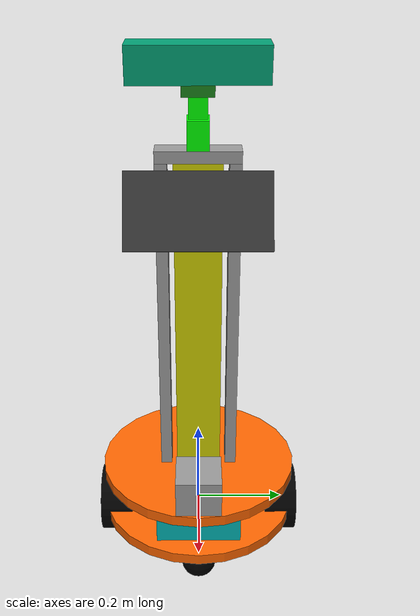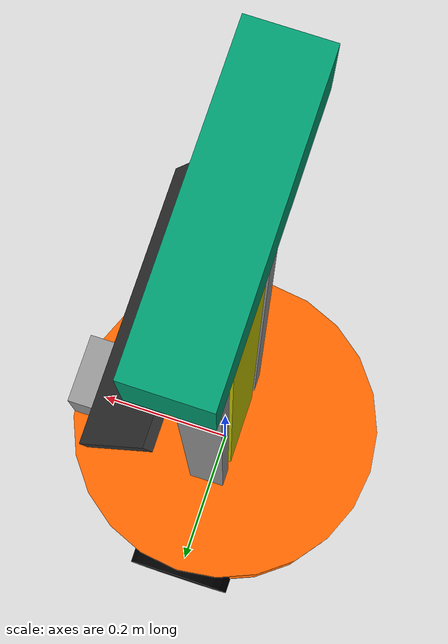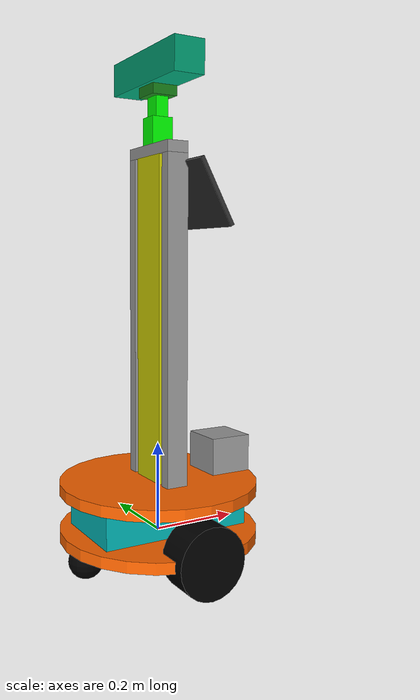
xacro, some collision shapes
<?xml version="1.0"?>
<robot name="robot" xmlns:controller="http://playerstage.sourceforge.net/gazebo/xmlschema/#controller"
       xmlns:interface="http://playerstage.sourceforge.net/gazebo/xmlschema/#interface"
       xmlns:sensor="http://playerstage.sourceforge.net/gazebo/xmlschema/#sensor"
       xmlns:xacro="http://ros.org/wiki/xacro">
  <!-- KINECT ATTACHMENT -->
  <joint name="camera_rgb_joint" type="fixed">
    <origin rpy="0 0 0" xyz="0.028 -0.0125 0.075"/>
    <parent link="kinect_base_link"/>
    <child link="camera_rgb_frame"/>
  </joint>
  <link name="camera_rgb_frame">
    <inertial>
      <mass value="0.001"/>
      <origin xyz="0 0 0"/>
      <inertia ixx="0.0001" ixy="0.0" ixz="0.0" iyy="0.0001" iyz="0.0" izz="0.0001"/>
    </inertial>
  </link>
  <joint name="camera_rgb_optical_joint" type="fixed">
    <origin rpy="-1.57079632679 0 -1.57079632679" xyz="0 0 0"/>
    <parent link="camera_rgb_frame"/>
    <child link="camera_rgb_optical_frame"/>
  </joint>
  <link name="camera_rgb_optical_frame">
    <inertial>
      <mass value="0.001"/>
      <origin xyz="0 0 0"/>
      <inertia ixx="0.0001" ixy="0.0" ixz="0.0" iyy="0.0001" iyz="0.0" izz="0.0001"/>
    </inertial>
  </link>
  <joint name="camera_joint" type="fixed">
    <origin rpy="0 0 0" xyz="-0.031 0.0125 -0.016"/>
    <parent link="camera_rgb_frame"/>
    <child link="camera_link"/>
  </joint>
  <link name="camera_link">
    <visual>
      <!--origin xyz="0 0 0" rpy="0 0 ${M_PI/2}"/-->
      <origin rpy="0 0 0" xyz="0 0 0"/>
      <geometry>
        <mesh filename="package://robot_description/meshes/kinect.dae"/>
      </geometry>
    </visual>
    <collision>
      <origin rpy="0 0 0" xyz="0.0 0.0 0.0"/>
      <geometry>
        <box size="0.07271 0.27794 0.073"/>
      </geometry>
    </collision>
    <inertial>
      <mass value="0.001"/>
      <origin xyz="0 0 0"/>
      <inertia ixx="0.0001" ixy="0.0" ixz="0.0" iyy="0.0001" iyz="0.0" izz="0.0001"/>
    </inertial>
  </link>
  <joint name="camera_depth_joint" type="fixed">
    <origin rpy="0 0 0" xyz="0 0.025 0"/>
    <parent link="camera_rgb_frame"/>
    <child link="camera_depth_frame"/>
  </joint>
  <link name="camera_depth_frame">
    <inertial>
      <mass value="0.001"/>
      <origin xyz="0 0 0"/>
      <inertia ixx="0.0001" ixy="0.0" ixz="0.0" iyy="0.0001" iyz="0.0" izz="0.0001"/>
    </inertial>
  </link>
  <joint name="camera_depth_optical_joint" type="fixed">
    <origin rpy="-1.57079632679 0 -1.57079632679" xyz="0 0 0"/>
    <parent link="camera_depth_frame"/>
    <child link="camera_depth_optical_frame"/>
  </joint>
  <link name="camera_depth_optical_frame">
    <inertial>
      <mass value="0.001"/>
      <origin xyz="0 0 0"/>
      <inertia ixx="0.0001" ixy="0.0" ixz="0.0" iyy="0.0001" iyz="0.0" izz="0.0001"/>
    </inertial>
  </link>
  <!-- LASER ATTACHMENT -->
  <link name="laser">
    <collision>
      <origin rpy="0 0 0" xyz="0 0 0"/>
      <geometry>
        <box size="0.1 0.1 0.1"/>
      </geometry>
    </collision>
    <visual>
      <origin rpy="0 0 0" xyz="0 0 0"/>
      <geometry>
        <mesh filename="package://robot_description/meshes/hokuyo.dae"/>
      </geometry>
    </visual>
    <inertial>
      <mass value="1e-5"/>
      <origin rpy="0 0 0" xyz="0 0 0"/>
      <inertia ixx="1e-6" ixy="0" ixz="0" iyy="1e-6" iyz="0" izz="1e-6"/>
    </inertial>
  </link>
  <joint name="laser_joint" type="fixed">
    <axis xyz="0 0 3.14"/>
    <origin rpy="0 0 0" xyz="0.168 0 0.06"/>
    <parent link="upper_base_link"/>
    <child link="laser"/>
  </joint>
  <!-- Import all Gazebo-customization elements, including Gazebo colors, sensors, controller -->
  <!--Including Gazebo sensors-->
  <gazebo reference="camera_link">
    <sensor name="camera" type="depth">
      <always_on>true</always_on>
      <update_rate>20.0</update_rate>
      <camera>
        <horizontal_fov>1.0471975512</horizontal_fov>
        <image>
          <format>R8G8B8</format>
          <width>640</width>
          <height>480</height>
        </image>
        <clip>
          <near>0.05</near>
          <far>8.0</far>
        </clip>
      </camera>
      <plugin filename="libgazebo_ros_openni_kinect.so" name="kinect_camera_controller">
        <cameraName>camera</cameraName>
        <alwaysOn>true</alwaysOn>
        <updateRate>10</updateRate>
        <imageTopicName>rgb/image_raw</imageTopicName>
        <depthImageTopicName>depth/image_raw</depthImageTopicName>
        <pointCloudTopicName>depth/points</pointCloudTopicName>
        <cameraInfoTopicName>rgb/camera_info</cameraInfoTopicName>
        <depthImageCameraInfoTopicName>depth/camera_info</depthImageCameraInfoTopicName>
        <frameName>camera_depth_optical_frame</frameName>
        <baseline>0.1</baseline>
        <distortion_k1>0.0</distortion_k1>
        <distortion_k2>0.0</distortion_k2>
        <distortion_k3>0.0</distortion_k3>
        <distortion_t1>0.0</distortion_t1>
        <distortion_t2>0.0</distortion_t2>
        <pointCloudCutoff>0.4</pointCloudCutoff>
      </plugin>
    </sensor>
  </gazebo>
  <gazebo reference="laser">
      <material>Gazebo/Grey</material>
      <sensor type="gpu_ray" name="head_hokuyo_sensor">
          <pose>0 0 0 0 0 0</pose>
          <visualize>true</visualize>
          <update_rate>40</update_rate>
          <ray>
              <scan>
                  <horizontal>
                      <samples>720</samples>
                      <resolution>1</resolution>
                      <min_angle>-2.268928028</min_angle>
                      <max_angle>2.268928028</max_angle>
                  </horizontal>
              </scan>
              <range>
                  <min>0.1</min>
                  <max>20.0</max>
                  <resolution>0.01</resolution>
              </range>
              <noise>
                  <type>gaussian</type>
                  <mean>0.0</mean>
                  <stddev>0.01</stddev>
              </noise>
          </ray>
          <plugin name="gazebo_ros_head_hokuyo_controller" filename="libgazebo_ros_gpu_laser.so">
              <robotNamespace>/robot</robotNamespace>
              <topicName>/scan</topicName>
              <frameName>laser</frameName>
          </plugin>
      </sensor>
  </gazebo>
  <!--Including Gazebo controller -->
  <gazebo>
    <plugin filename="libgazebo_ros_control.so" name="gazebo_ros_control">
      <robotNamespace>/robot</robotNamespace>
    </plugin>
  </gazebo>
  <!-- Including Gazebo ros diff drive -->
  <gazebo>
    <plugin filename="libgazebo_ros_diff_drive.so" name="differential_drive_controller">
      <rosDebugLevel>Debug</rosDebugLevel>
      <publishWheelTF>true</publishWheelTF>
      <publishWheelJointState>false</publishWheelJointState>
      <alwaysOn>true</alwaysOn>
      <updateRate>100</updateRate>
      <leftJoint>base_to_wheel4</leftJoint>
      <rightJoint>base_to_wheel2</rightJoint>
      <wheelSeparation>0.390</wheelSeparation>
      <wheelDiameter>0.155</wheelDiameter>
      <wheelTorque>30</wheelTorque>
      <wheelAcceleration>0.25</wheelAcceleration>
      <commandTopic>cmd_vel</commandTopic>
      <odometryTopic>odom</odometryTopic>
      <odometryFrame>odom</odometryFrame>
      <robotBaseFrame>base_footprint</robotBaseFrame>
      <publishOdomTF>true</publishOdomTF>
    </plugin>
  </gazebo>
  <!--Including Gazebo colors-->
  <gazebo reference="base_link">
    <material>Gazebo/Orange</material>
  </gazebo>
  <gazebo reference="wheel_1">
    <mu1 value="0.0"/>
    <mu2 value="0.0"/>
    <material>Gazebo/Black</material>
  </gazebo>
  <gazebo reference="wheel_2">
    <material>Gazebo/Black</material>
    <mu1>1000000.0</mu1>
    <mu2>1000000.0</mu2>
    <kp>1000000.0</kp>
    <kd>100</kd>
    <minDepth>0.001</minDepth>
    <maxVel>1.0</maxVel>
  </gazebo>
  <gazebo reference="wheel_3">
    <mu1 value="0.0"/>
    <mu2 value="0.0"/>
    <material>Gazebo/Black</material>
  </gazebo>
  <gazebo reference="wheel_4">
    <material>Gazebo/Black</material>
    <mu1>1000000.0</mu1>
    <mu2>1000000.0</mu2>
    <kp>1000000.0</kp>
    <kd>100.0</kd>
    <minDepth>0.001</minDepth>
    <maxVel>1.0</maxVel>
  </gazebo>
  <gazebo reference="cpu_link">
    <mu1 value="0.0"/>
    <mu2 value="0.0"/>
    <material>Gazebo/SkyBlue</material>
  </gazebo>
  <gazebo reference="upper_base_link">
    <material>Gazebo/Orange</material>
  </gazebo>
  <gazebo reference="torso_link">
    <material>Gazebo/RedGlow</material>
  </gazebo>
  <gazebo reference="right_torso_link">
    <material>Gazebo/Grey</material>
  </gazebo>
  <gazebo reference="left_torso_link">
    <material>Gazebo/Grey</material>
  </gazebo>
  <gazebo reference="top_torso_link">
    <material>Gazebo/Grey</material>
  </gazebo>
  <gazebo reference="head_pan_link">
    <material>Gazebo/Green</material>
  </gazebo>
  <gazebo reference="head_tilt_link">
    <material>Gazebo/GreenGlow</material>
  </gazebo>
  <gazebo reference="kinect_base_link">
    <material>Gazebo/Green</material>
  </gazebo>
  <gazebo reference="screen_link">
    <material>Gazebo/Black</material>
  </gazebo>
  <!-- Add view camera - working -->
  <joint name="view_camera_joint" type="continuous"> <!--type="continuous"-->
    <origin rpy="0 1.570796 0" xyz="0 0 6"/>
    <parent link="kinect_base_link"/>
    <child link="view_camera_link"/>
    <!-- use the following line and type="continuous" to fix the angle of the view camera -->
    <axis xyz="1 0 0"/>
  </joint>
  <link name="view_camera_link">
    <inertial>
      <mass value="1e-5"/>
      <origin rpy="0 0 0" xyz="0 0 0"/>
      <inertia ixx="1e-6" ixy="0" ixz="0" iyy="1e-6" iyz="0" izz="1e-6"/>
    </inertial>
  </link>
  <gazebo reference="view_camera_link">
    <sensor name="view_camera" type="camera">
      <update_rate>30.0</update_rate>
      <camera name="head">
        <image>
          <width>960</width>
          <height>540</height>
          <format>R8G8B8</format>
        </image>
        <clip>
          <near>0.02</near>
          <far>300</far>
        </clip>
        <noise>
          <type>gaussian</type>
          <mean>0.0</mean>
          <stddev>0.007</stddev>
        </noise>
      </camera>
      <plugin filename="libgazebo_ros_camera.so" name="camera_controller">
        <alwaysOn>true</alwaysOn>
        <updateRate>25.0</updateRate>
        <cameraName>view_camera</cameraName>
        <imageTopicName>image_raw</imageTopicName>
        <cameraInfoTopicName>camera_info</cameraInfoTopicName>
        <frameName>view_camera_link</frameName>
        <CxPrime>320.5</CxPrime>
        <Cx>320.5</Cx>
        <Cy>240.5</Cy>
        <!-- image_width / (2*tan(hfov_radian /2)) -->
        <!-- 320 for wide and 772.55 for narrow stereo camera -->
        <focal_length>320</focal_length>
        <distortion_k1>0.0</distortion_k1>
        <distortion_k2>0.0</distortion_k2>
        <distortion_k3>0.0</distortion_k3>
        <distortion_t1>0.0</distortion_t1>
        <distortion_t2>0.0</distortion_t2>
      </plugin>
    </sensor>
    <material>Gazebo/Blue</material>
  </gazebo>
  <!--xacro:property name="height_torso" value="0.625" /-->
  <!-- HARDWAER OF ROBOT -->
  <!-- ========= LINKS =========== -->
  <link name="base_footprint">
    <visual>
      <geometry>
        <box size="0.001 0.001 0.001"/>
      </geometry>
      <origin rpy="0 0 0" xyz="0 0 0"/>
      <!--origin rpy="0 0 -0.784900" xyz="0 0 0"/-->
    </visual>
    <inertial>
      <mass value="0.0001"/>
      <inertia ixx="1.0" ixy="0.0" ixz="0.0" iyy="1.0" iyz="0.0" izz="1.0"/>
    </inertial>
  </link>
  <joint name="base_footprint_joint" type="fixed">
    <origin xyz="0 0 0"/>
    <parent link="base_footprint"/>
    <child link="base_link"/>
  </joint>
  <link name="base_link">
    <visual>
      <origin rpy="0 0 0" xyz="0 0 0"/>
      <geometry>
        <cylinder length="0.025" radius="0.225"/>
      </geometry>
      <material name="Orange">
        <color rgba="1.0 0.4 0.0 1.0"/>
      </material>
    </visual>
    <collision>
      <geometry>
        <cylinder length="0.025" radius="0.225"/>
      </geometry>
    </collision>
    <inertial>
      <mass value="10"/>
      <inertia ixx="0.571875" ixy="0" ixz="0" iyy="0.571875" iyz="0" izz="1.1390625"/>
    </inertial>
  </link>
  <!--front wheel -->
  <link name="wheel_1">
    <visual>
      <origin rpy="0 0 0" xyz="0 0 0"/>
      <geometry>
        <sphere radius="0.03875"/>
      </geometry>
      <material name="black">
        <color rgba="0 0 0 1"/>
      </material>
    </visual>
    <collision>
      <origin rpy="0 0 0" xyz="0 0 0"/>
      <geometry>
        <sphere radius="0.03875"/>
      </geometry>
    </collision>
    <inertial>
      <origin rpy="0 0 0" xyz="0 0 0"/>
      <mass value="2"/>
      <inertia ixx="0.00120125" ixy="0" ixz="0" iyy="0.00120125" iyz="0" izz="0.00120125"/>
    </inertial>
  </link>
  <!-- left wheel -->
  <link name="wheel_2">
    <visual>
      <geometry>
        <cylinder length="0.075" radius="0.0775"/>
      </geometry>
      <origin rpy="0 0 0" xyz="0 0 0"/>
      <material name="black"/>
    </visual>
    <collision>
      <origin rpy="0 0 0" xyz="0 0 0"/>
      <geometry>
        <cylinder length="0.075" radius="0.0775"/>
      </geometry>
    </collision>
    <inertial>
      <mass value="2"/>
      <inertia ixx="0.003940625" ixy="0" ixz="0" iyy="0.003940625" iyz="0" izz="0.00600625"/>
    </inertial>
  </link>
  <!-- back wheel -->
  <link name="wheel_3">
    <visual>
      <origin rpy="0 0 0" xyz="0 0 0"/>
      <geometry>
        <sphere radius="0.03875"/>
      </geometry>
      <material name="black">
        <color rgba="0 0 0 1"/>
      </material>
    </visual>
    <collision>
      <origin rpy="0 0 0" xyz="0 0 0"/>
      <geometry>
        <sphere radius="0.03875"/>
      </geometry>
    </collision>
    <inertial>
      <origin rpy="0 0 0" xyz="0 0 0"/>
      <mass value="2"/>
      <inertia ixx="0.00120125" ixy="0" ixz="0" iyy="0.00120125" iyz="0" izz="0.00120125"/>
    </inertial>
  </link>
  <!-- right wheel -->
  <link name="wheel_4">
    <visual>
      <geometry>
        <cylinder length="0.075" radius="0.0775"/>
      </geometry>
      <origin rpy="0 0 0" xyz="0 0 0"/>
      <material name="black"/>
    </visual>
    <collision>
      <origin rpy="0 0 0" xyz="0 0 0"/>
      <geometry>
        <cylinder length="0.075" radius="0.0775"/>
      </geometry>
    </collision>
    <inertial>
      <mass value="2"/>
      <inertia ixx="0.003940625" ixy="0" ixz="0" iyy="0.003940625" iyz="0" izz="0.00600625"/>
    </inertial>
  </link>
  <link name="cpu_link">
    <visual>
      <geometry>
        <box size="0.35 .19 0.095"/>
      </geometry>
      <origin rpy="0 0 0" xyz="0 0 0.0475"/>
      <material name="Cyan2">
        <color rgba="0 0.7 0.7 1.0"/>
      </material>
    </visual>
    <collision>
      <origin rpy="0 0 0" xyz="0 0 0.0475"/>
      <geometry>
        <box size="0.35 .19 0.095"/>
      </geometry>
    </collision>
    <inertial>
      <mass value="2"/>
      <inertia ixx="1.0" ixy="0.0" ixz="0.0" iyy="1.0" iyz="0.0" izz="1.0"/>
    </inertial>
  </link>
  <link name="upper_base_link">
    <visual>
      <origin rpy="0 0 0" xyz="0 0 0.0125"/>
      <geometry>
        <cylinder length="0.025" radius="0.225"/>
      </geometry>
      <material name="Orange">
        <color rgba="1.0 0.4 0.0 1.0"/>
      </material>
    </visual>
    <collision>
      <origin rpy="0 0 0" xyz="0 0 0.0125"/>
      <geometry>
        <cylinder length="0.025" radius="0.225"/>
      </geometry>
    </collision>
    <inertial>
      <mass value="1"/>
      <inertia ixx="1.0" ixy="0.0" ixz="0.0" iyy="1.0" iyz="0.0" izz="1.0"/>
    </inertial>
  </link>
  <link name="torso_link">
    <visual>
      <origin rpy="0 0 0" xyz="0 0 0.3625"/>
      <geometry>
        <box size="0.05 0.1 0.725"/>
      </geometry>
      <material name="Yellow2">
        <color rgba="0.8 0.8 0 1.0"/>
      </material>
    </visual>
    <collision>
      <origin rpy="0 0 0" xyz="0 0 0.3625"/>
      <geometry>
        <box size="0.05 0.1 0.725"/>
      </geometry>
    </collision>
    <inertial>
      <mass value="1"/>
      <inertia ixx="1.0" ixy="0.0" ixz="0.0" iyy="1.0" iyz="0.0" izz="1.0"/>
    </inertial>
  </link>
  <link name="right_torso_link">
    <visual>
      <origin rpy="0 0 0" xyz="0 0 0.3625"/>
      <geometry>
        <box size="0.05 0.025 0.725"/>
      </geometry>
      <material name="Grey2">
        <color rgba="0.6 0.6 0.6 1.0"/>
      </material>
    </visual>
    <collision>
      <origin rpy="0 0 0" xyz="0 0 0.3625"/>
      <geometry>
        <box size="0.05 0.1 0.725"/>
      </geometry>
    </collision>
    <inertial>
      <mass value="1"/>
      <inertia ixx="1.0" ixy="0.0" ixz="0.0" iyy="1.0" iyz="0.0" izz="1.0"/>
    </inertial>
  </link>
  <link name="left_torso_link">
    <visual>
      <origin rpy="0 0 0" xyz="0 0 0.3625"/>
      <geometry>
        <box size="0.05 0.025 0.725"/>
      </geometry>
      <material name="Grey2">
        <color rgba="0.6 0.6 0.6 1.0"/>
      </material>
    </visual>
    <collision>
      <origin rpy="0 0 0" xyz="0 0 0.3625"/>
      <geometry>
        <box size="0.05 0.1 0.725"/>
      </geometry>
    </collision>
    <inertial>
      <mass value="1"/>
      <inertia ixx="1.0" ixy="0.0" ixz="0.0" iyy="1.0" iyz="0.0" izz="1.0"/>
    </inertial>
  </link>
  <link name="top_torso_link">
    <visual>
      <origin rpy="0 0 0" xyz="0 0 0.0125"/>
      <geometry>
        <box size="0.05 0.175 0.025"/>
      </geometry>
      <material name="Grey2">
        <color rgba="0.6 0.6 0.6 1.0"/>
      </material>
    </visual>
    <collision>
      <origin rpy="0 0 0" xyz="0 0 0.0125"/>
      <geometry>
        <box size="0.05 0.125 0.025"/>
      </geometry>
    </collision>
    <inertial>
      <mass value="0.125"/>
      <inertia ixx="1.0" ixy="0.0" ixz="0.0" iyy="1.0" iyz="0.0" izz="1.0"/>
    </inertial>
  </link>
  <link name="head_pan_link">
    <visual>
      <origin rpy="0 0 0" xyz="0 0 0.03"/>
      <geometry>
        <box size="0.05 0.045 0.06"/>
      </geometry>
      <material name="Green1">
        <color rgba="0 1 0 1.0"/>
      </material>
    </visual>
    <collision>
      <origin rpy="0 0 0" xyz="0 0 0.03"/>
      <geometry>
        <box size="0.05 0.045 0.06"/>
      </geometry>
    </collision>
    <inertial>
      <mass value="0.125"/>
      <inertia ixx="1.0" ixy="0.0" ixz="0.0" iyy="1.0" iyz="0.0" izz="1.0"/>
    </inertial>
  </link>
  <link name="head_tilt_link">
    <visual>
      <origin rpy="0 0 0" xyz="0 0 0.0225"/>
      <geometry>
        <box size="0.03 0.038 0.045"/>
      </geometry>
      <material name="Green1">
        <color rgba="0 1 0 1.0"/>
      </material>
    </visual>
    <collision>
      <origin rpy="0 0 0" xyz="0 0 0.0225"/>
      <geometry>
        <box size="0.03 0.038 0.045"/>
      </geometry>
    </collision>
    <inertial>
      <mass value="0.125"/>
      <inertia ixx="1.0" ixy="0.0" ixz="0.0" iyy="1.0" iyz="0.0" izz="1.0"/>
    </inertial>
  </link>
  <link name="kinect_base_link">
    <visual>
      <origin rpy="0 0 0" xyz="0 0 0.0125"/>
      <geometry>
        <box size="0.06 0.065 0.025"/>
      </geometry>
      <material name="Green3">
        <color rgba="0.1 0.5 0.1 1.0"/>
      </material>
    </visual>
    <collision>
      <geometry>
        <box size="0.06 0.065 0.025"/>
      </geometry>
    </collision>
    <inertial>
      <mass value="0.125"/>
      <inertia ixx="1.0" ixy="0.0" ixz="0.0" iyy="1.0" iyz="0.0" izz="1.0"/>
    </inertial>
  </link>
  <link name="screen_link">
    <visual>
      <origin rpy="0 -0.5 0" xyz="0.06 0 -0.11"/>
      <geometry>
        <box size="0.01 0.3 0.16"/>
      </geometry>
      <material name="Grey3">
        <color rgba="0.2 0.2 0.2 1.0"/>
      </material>
    </visual>
    <collision>
      <origin rpy="0 -0.5 0" xyz="0.06 0 -0.11"/>
      <geometry>
        <box size="0.01 0.3 0.16"/>
      </geometry>
    </collision>
    <inertial>
      <mass value="0.125"/>
      <inertia ixx="1.0" ixy="0.0" ixz="0.0" iyy="1.0" iyz="0.0" izz="1.0"/>
    </inertial>
  </link>
  <!-- ========= JOINTS =========== -->
  <joint name="base_to_wheel1" type="continuous">
    <parent link="base_link"/>
    <child link="wheel_1"/>
    <origin rpy="0 0 0" xyz="0.18 0 -0.03865234375"/>
    <axis xyz="0 0 1"/>
  </joint>
  <joint name="base_to_wheel2" type="continuous">
    <axis xyz="0 0 1"/>
    <parent link="base_link"/>
    <child link="wheel_2"/>
    <origin rpy="-1.5707 0 0" xyz="0 -0.195 0"/>
  </joint>
  <joint name="base_to_wheel3" type="continuous">
    <parent link="base_link"/>
    <axis xyz="0 0 1"/>
    <child link="wheel_3"/>
    <!--added length_base/32 to get the contact of the wheel with the floor -->
    <origin rpy="0 0 0" xyz="-0.18 0 -0.03865234375"/>
  </joint>
  <joint name="base_to_wheel4" type="continuous">
    <parent link="base_link"/>
    <axis xyz="0 0 1"/>
    <child link="wheel_4"/>
    <origin rpy="-1.5707 0 0" xyz="0 0.195 0"/>
  </joint>
  <joint name="cpu_base_joint" type="fixed">
    <origin xyz="0 0 0"/>
    <parent link="base_link"/>
    <child link="cpu_link"/>
  </joint>
  <joint name="upper_base_cpu_joint" type="fixed">
    <origin xyz="0 0 0.095"/>
    <parent link="cpu_link"/>
    <child link="upper_base_link"/>
  </joint>
  <joint name="torso_upper_base_joint" type="fixed">
    <origin xyz="0 0 0.025"/>
    <parent link="upper_base_link"/>
    <child link="torso_link"/>
  </joint>
  <joint name="right_torso_upper_base_joint" type="fixed">
    <origin xyz="0 -0.075 0.025"/>
    <parent link="upper_base_link"/>
    <child link="right_torso_link"/>
  </joint>
  <joint name="left_torso_upper_base_joint" type="fixed">
    <parent link="upper_base_link"/>
    <child link="left_torso_link"/>
    <origin xyz="0 0.075 0.025"/>
  </joint>
  <joint name="top_torso_torso_joint" type="fixed">
    <parent link="torso_link"/>
    <child link="top_torso_link"/>
    <origin xyz="0 0 0.725"/>
  </joint>
  <joint name="head_pan_servo" type="fixed">
    <parent link="top_torso_link"/>
    <child link="head_pan_link"/>
    <origin rpy="0 0 0" xyz="0 0 0.025"/>
  </joint>
  <joint name="head_pan_joint" type="fixed">
    <parent link="head_pan_link"/>
    <child link="head_tilt_link"/>
    <origin rpy="0 0 0" xyz="0 0 0.06"/>
  </joint>
  <joint name="kinect_base_joint" type="fixed">
    <parent link="head_tilt_link"/>
    <child link="kinect_base_link"/>
    <origin rpy="0 0 0" xyz="0 0 0.045"/>
  </joint>
  <joint name="screen_joint" type="fixed">
    <parent link="top_torso_link"/>
    <child link="screen_link"/>
    <origin rpy="0 0 0" xyz="0 0 0.025"/>
  </joint>

</robot>
